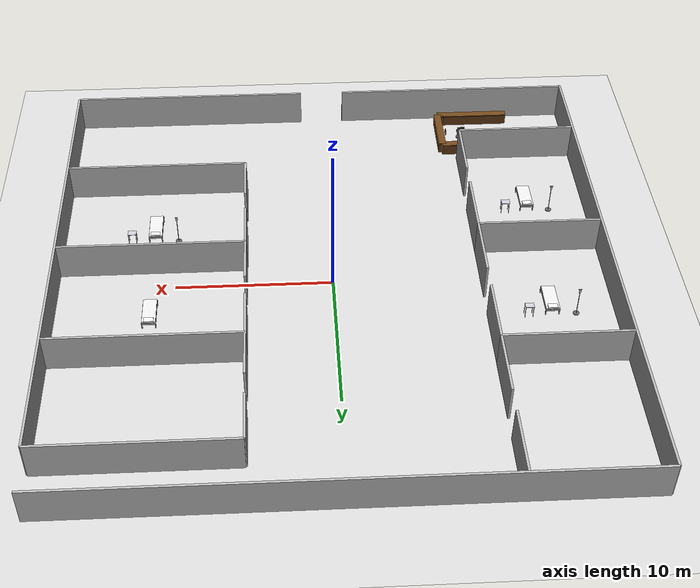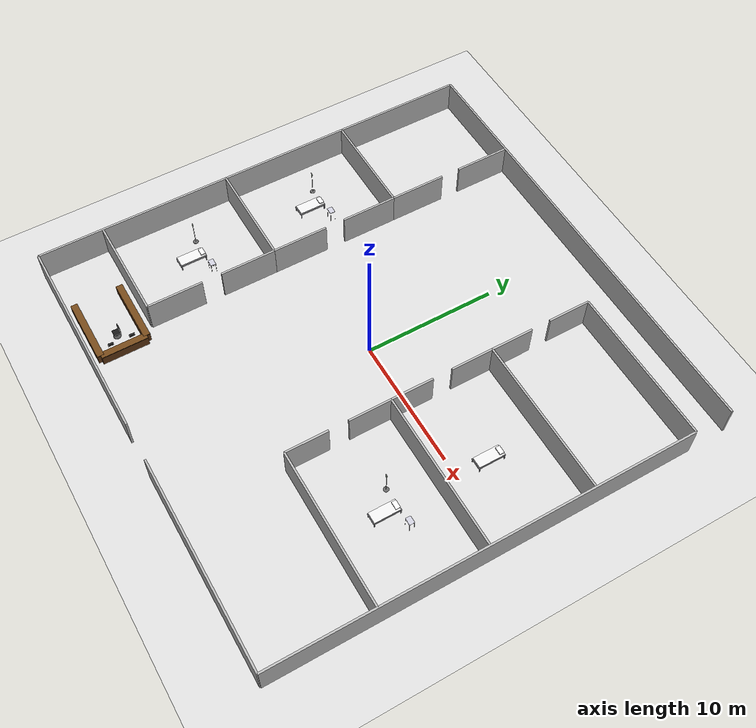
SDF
<sdf version="1.7">
 <world name="pr2_world">
  <model name="ground_plane">
   <static>1</static>
   <link name="link">
    <collision name="collision">
     <geometry><plane><normal>0 0 1</normal><size>200 200</size></plane></geometry>
     <surface><friction><ode><mu>100</mu><mu2>50</mu2></ode></friction></surface>
    </collision>
    <visual name="visual">
     <cast_shadows>0</cast_shadows>
     <geometry><plane><normal>0 0 1</normal><size>200 200</size></plane></geometry>
     <material>
      <ambient>0.85 0.85 0.85 1</ambient>
      <diffuse>0.85 0.85 0.85 1</diffuse>
      <specular>0.05 0.05 0.05 1</specular>
     </material>
    </visual>
   </link>
  </model>
  <model name="pr2_outer_walls">
   <static>1</static>
   <link name="Wall_south_left">
    <collision name="col">
     <geometry><box><size>16.0 0.15 2.5</size></box></geometry>
     <pose>0 0 1.25 0 0 0</pose>
    </collision>
    <visual name="vis">
     <pose>0 0 1.25 0 0 0</pose>
     <geometry><box><size>16.0 0.15 2.5</size></box></geometry>
     <material>
      <script><uri>file://media/materials/scripts/gazebo.material</uri><n>Gazebo/Grey</n></script>
     </material>
    </visual>
    <pose>-9.5 -17.5 0 0 0 0</pose>
   </link>
   <link name="Wall_south_right">
    <collision name="col">
     <geometry><box><size>16.0 0.15 2.5</size></box></geometry>
     <pose>0 0 1.25 0 0 0</pose>
    </collision>
    <visual name="vis">
     <pose>0 0 1.25 0 0 0</pose>
     <geometry><box><size>16.0 0.15 2.5</size></box></geometry>
     <material>
      <script><uri>file://media/materials/scripts/gazebo.material</uri><n>Gazebo/Grey</n></script>
     </material>
    </visual>
    <pose>9.5 -17.5 0 0 0 0</pose>
   </link>
   <link name="Wall_north">
    <collision name="col">
     <geometry><box><size>35.0 0.15 2.5</size></box></geometry>
     <pose>0 0 1.25 0 0 0</pose>
    </collision>
    <visual name="vis">
     <pose>0 0 1.25 0 0 0</pose>
     <geometry><box><size>35.0 0.15 2.5</size></box></geometry>
     <material>
      <script><uri>file://media/materials/scripts/gazebo.material</uri><n>Gazebo/Grey</n></script>
     </material>
    </visual>
    <pose>0 17.5 0 0 0 0</pose>
   </link>
   <link name="Wall_west">
    <collision name="col">
     <geometry><box><size>0.15 35.0 2.5</size></box></geometry>
     <pose>0 0 1.25 0 0 0</pose>
    </collision>
    <visual name="vis">
     <pose>0 0 1.25 0 0 0</pose>
     <geometry><box><size>0.15 35.0 2.5</size></box></geometry>
     <material>
      <script><uri>file://media/materials/scripts/gazebo.material</uri><n>Gazebo/Grey</n></script>
     </material>
    </visual>
    <pose>-17.5 0 0 0 0 0</pose>
   </link>
   <link name="Wall_east_south">
    <collision name="col">
     <geometry><box><size>0.15 32.0 2.5</size></box></geometry>
     <pose>0 0 1.25 0 0 0</pose>
    </collision>
    <visual name="vis">
     <pose>0 0 1.25 0 0 0</pose>
     <geometry><box><size>0.15 32.0 2.5</size></box></geometry>
     <material>
      <script><uri>file://media/materials/scripts/gazebo.material</uri><n>Gazebo/Grey</n></script>
     </material>
    </visual>
    <pose>17.5 -1.5 0 0 0 0</pose>
   </link>
  </model>
  <model name="room1_walls">
   <static>1</static>
   <link name="R1_south">
    <collision name="col">
     <geometry><box><size>8.0 0.15 2.5</size></box></geometry>
     <pose>0 0 1.25 0 0 0</pose>
    </collision>
    <visual name="vis">
     <pose>0 0 1.25 0 0 0</pose>
     <geometry><box><size>8.0 0.15 2.5</size></box></geometry>
     <material>
      <script><uri>file://media/materials/scripts/gazebo.material</uri><n>Gazebo/Grey</n></script>
     </material>
    </visual>
    <pose>-13.5 7.5 0 0 0 0</pose>
   </link>
   <link name="R1_east_s">
    <collision name="col">
     <geometry><box><size>0.15 4.25 2.5</size></box></geometry>
     <pose>0 0 1.25 0 0 0</pose>
    </collision>
    <visual name="vis">
     <pose>0 0 1.25 0 0 0</pose>
     <geometry><box><size>0.15 4.25 2.5</size></box></geometry>
     <material>
      <script><uri>file://media/materials/scripts/gazebo.material</uri><n>Gazebo/Grey</n></script>
     </material>
    </visual>
    <pose>-9.5 9.625 0 0 0 0</pose>
   </link>
   <link name="R1_east_n">
    <collision name="col">
     <geometry><box><size>0.15 4.25 2.5</size></box></geometry>
     <pose>0 0 1.25 0 0 0</pose>
    </collision>
    <visual name="vis">
     <pose>0 0 1.25 0 0 0</pose>
     <geometry><box><size>0.15 4.25 2.5</size></box></geometry>
     <material>
      <script><uri>file://media/materials/scripts/gazebo.material</uri><n>Gazebo/Grey</n></script>
     </material>
    </visual>
    <pose>-9.5 15.375 0 0 0 0</pose>
   </link>
  </model>
  <model name="room2_walls">
   <static>1</static>
   <link name="R2_south">
    <collision name="col">
     <geometry><box><size>8.0 0.15 2.5</size></box></geometry>
     <pose>0 0 1.25 0 0 0</pose>
    </collision>
    <visual name="vis">
     <pose>0 0 1.25 0 0 0</pose>
     <geometry><box><size>8.0 0.15 2.5</size></box></geometry>
     <material>
      <script><uri>file://media/materials/scripts/gazebo.material</uri><n>Gazebo/Grey</n></script>
     </material>
    </visual>
    <pose>-13.5 -2.5 0 0 0 0</pose>
   </link>
   <link name="R2_east_s">
    <collision name="col">
     <geometry><box><size>0.15 4.25 2.5</size></box></geometry>
     <pose>0 0 1.25 0 0 0</pose>
    </collision>
    <visual name="vis">
     <pose>0 0 1.25 0 0 0</pose>
     <geometry><box><size>0.15 4.25 2.5</size></box></geometry>
     <material>
      <script><uri>file://media/materials/scripts/gazebo.material</uri><n>Gazebo/Grey</n></script>
     </material>
    </visual>
    <pose>-9.5 -0.375 0 0 0 0</pose>
   </link>
   <link name="R2_east_n">
    <collision name="col">
     <geometry><box><size>0.15 4.25 2.5</size></box></geometry>
     <pose>0 0 1.25 0 0 0</pose>
    </collision>
    <visual name="vis">
     <pose>0 0 1.25 0 0 0</pose>
     <geometry><box><size>0.15 4.25 2.5</size></box></geometry>
     <material>
      <script><uri>file://media/materials/scripts/gazebo.material</uri><n>Gazebo/Grey</n></script>
     </material>
    </visual>
    <pose>-9.5 5.375 0 0 0 0</pose>
   </link>
  </model>
  <model name="room3_walls">
   <static>1</static>
   <link name="R3_south">
    <collision name="col">
     <geometry><box><size>8.0 0.15 2.5</size></box></geometry>
     <pose>0 0 1.25 0 0 0</pose>
    </collision>
    <visual name="vis">
     <pose>0 0 1.25 0 0 0</pose>
     <geometry><box><size>8.0 0.15 2.5</size></box></geometry>
     <material>
      <script><uri>file://media/materials/scripts/gazebo.material</uri><n>Gazebo/Grey</n></script>
     </material>
    </visual>
    <pose>-13.5 -12.5 0 0 0 0</pose>
   </link>
   <link name="R3_east_s">
    <collision name="col">
     <geometry><box><size>0.15 4.25 2.5</size></box></geometry>
     <pose>0 0 1.25 0 0 0</pose>
    </collision>
    <visual name="vis">
     <pose>0 0 1.25 0 0 0</pose>
     <geometry><box><size>0.15 4.25 2.5</size></box></geometry>
     <material>
      <script><uri>file://media/materials/scripts/gazebo.material</uri><n>Gazebo/Grey</n></script>
     </material>
    </visual>
    <pose>-9.5 -10.375 0 0 0 0</pose>
   </link>
   <link name="R3_east_n">
    <collision name="col">
     <geometry><box><size>0.15 4.25 2.5</size></box></geometry>
     <pose>0 0 1.25 0 0 0</pose>
    </collision>
    <visual name="vis">
     <pose>0 0 1.25 0 0 0</pose>
     <geometry><box><size>0.15 4.25 2.5</size></box></geometry>
     <material>
      <script><uri>file://media/materials/scripts/gazebo.material</uri><n>Gazebo/Grey</n></script>
     </material>
    </visual>
    <pose>-9.5 -4.625 0 0 0 0</pose>
   </link>
  </model>
  <model name="room6_walls">
   <static>1</static>
   <link name="R6_south">
    <collision name="col">
     <geometry><box><size>12.0 0.15 2.5</size></box></geometry>
     <pose>0 0 1.25 0 0 0</pose>
    </collision>
    <visual name="vis">
     <pose>0 0 1.25 0 0 0</pose>
     <geometry><box><size>12.0 0.15 2.5</size></box></geometry>
     <material>
      <script><uri>file://media/materials/scripts/gazebo.material</uri><n>Gazebo/Grey</n></script>
     </material>
    </visual>
    <pose>11.5 6.5 0 0 0 0</pose>
   </link>
   <link name="R6_north">
    <collision name="col">
     <geometry><box><size>12.0 0.15 2.5</size></box></geometry>
     <pose>0 0 1.25 0 0 0</pose>
    </collision>
    <visual name="vis">
     <pose>0 0 1.25 0 0 0</pose>
     <geometry><box><size>12.0 0.15 2.5</size></box></geometry>
     <material>
      <script><uri>file://media/materials/scripts/gazebo.material</uri><n>Gazebo/Grey</n></script>
     </material>
    </visual>
    <pose>11.5 14.5 0 0 0 0</pose>
   </link>
   <link name="R6_west_s">
    <collision name="col">
     <geometry><box><size>0.15 3.25 2.5</size></box></geometry>
     <pose>0 0 1.25 0 0 0</pose>
    </collision>
    <visual name="vis">
     <pose>0 0 1.25 0 0 0</pose>
     <geometry><box><size>0.15 3.25 2.5</size></box></geometry>
     <material>
      <script><uri>file://media/materials/scripts/gazebo.material</uri><n>Gazebo/Grey</n></script>
     </material>
    </visual>
    <pose>5.5 8.125 0 0 0 0</pose>
   </link>
   <link name="R6_west_n">
    <collision name="col">
     <geometry><box><size>0.15 3.25 2.5</size></box></geometry>
     <pose>0 0 1.25 0 0 0</pose>
    </collision>
    <visual name="vis">
     <pose>0 0 1.25 0 0 0</pose>
     <geometry><box><size>0.15 3.25 2.5</size></box></geometry>
     <material>
      <script><uri>file://media/materials/scripts/gazebo.material</uri><n>Gazebo/Grey</n></script>
     </material>
    </visual>
    <pose>5.5 12.875 0 0 0 0</pose>
   </link>
  </model>
  <model name="room5_walls">
   <static>1</static>
   <link name="R5_south">
    <collision name="col">
     <geometry><box><size>12.0 0.15 2.5</size></box></geometry>
     <pose>0 0 1.25 0 0 0</pose>
    </collision>
    <visual name="vis">
     <pose>0 0 1.25 0 0 0</pose>
     <geometry><box><size>12.0 0.15 2.5</size></box></geometry>
     <material>
      <script><uri>file://media/materials/scripts/gazebo.material</uri><n>Gazebo/Grey</n></script>
     </material>
    </visual>
    <pose>11.5 -1.5 0 0 0 0</pose>
   </link>
   <link name="R5_west_s">
    <collision name="col">
     <geometry><box><size>0.15 3.25 2.5</size></box></geometry>
     <pose>0 0 1.25 0 0 0</pose>
    </collision>
    <visual name="vis">
     <pose>0 0 1.25 0 0 0</pose>
     <geometry><box><size>0.15 3.25 2.5</size></box></geometry>
     <material>
      <script><uri>file://media/materials/scripts/gazebo.material</uri><n>Gazebo/Grey</n></script>
     </material>
    </visual>
    <pose>5.5 0.125 0 0 0 0</pose>
   </link>
   <link name="R5_west_n">
    <collision name="col">
     <geometry><box><size>0.15 3.25 2.5</size></box></geometry>
     <pose>0 0 1.25 0 0 0</pose>
    </collision>
    <visual name="vis">
     <pose>0 0 1.25 0 0 0</pose>
     <geometry><box><size>0.15 3.25 2.5</size></box></geometry>
     <material>
      <script><uri>file://media/materials/scripts/gazebo.material</uri><n>Gazebo/Grey</n></script>
     </material>
    </visual>
    <pose>5.5 4.875 0 0 0 0</pose>
   </link>
  </model>
  <model name="room4_walls">
   <static>1</static>
   <link name="R4_south">
    <collision name="col">
     <geometry><box><size>12.0 0.15 2.5</size></box></geometry>
     <pose>0 0 1.25 0 0 0</pose>
    </collision>
    <visual name="vis">
     <pose>0 0 1.25 0 0 0</pose>
     <geometry><box><size>12.0 0.15 2.5</size></box></geometry>
     <material>
      <script><uri>file://media/materials/scripts/gazebo.material</uri><n>Gazebo/Grey</n></script>
     </material>
    </visual>
    <pose>11.5 -9.5 0 0 0 0</pose>
   </link>
   <link name="R4_west_s">
    <collision name="col">
     <geometry><box><size>0.15 3.25 2.5</size></box></geometry>
     <pose>0 0 1.25 0 0 0</pose>
    </collision>
    <visual name="vis">
     <pose>0 0 1.25 0 0 0</pose>
     <geometry><box><size>0.15 3.25 2.5</size></box></geometry>
     <material>
      <script><uri>file://media/materials/scripts/gazebo.material</uri><n>Gazebo/Grey</n></script>
     </material>
    </visual>
    <pose>5.5 -7.875 0 0 0 0</pose>
   </link>
   <link name="R4_west_n">
    <collision name="col">
     <geometry><box><size>0.15 3.25 2.5</size></box></geometry>
     <pose>0 0 1.25 0 0 0</pose>
    </collision>
    <visual name="vis">
     <pose>0 0 1.25 0 0 0</pose>
     <geometry><box><size>0.15 3.25 2.5</size></box></geometry>
     <material>
      <script><uri>file://media/materials/scripts/gazebo.material</uri><n>Gazebo/Grey</n></script>
     </material>
    </visual>
    <pose>5.5 -3.125 0 0 0 0</pose>
   </link>
  </model>
  <model name="reception_back">
   <static>1</static>
   <pose>-8.5 -15.0 0 0 0 0</pose>
   <link name="link">
    <visual name="top_vis">
     <pose>0 0 0.75 0 0 0</pose>
     <geometry><box><size>0.50 3.5 0.06</size></box></geometry>
     <material>
      <ambient>0.45 0.28 0.10 1</ambient>
      <diffuse>0.45 0.28 0.10 1</diffuse>
      <specular>0.12 0.08 0.04 1</specular>
     </material>
    </visual>
    <collision name="top_col">
     <pose>0 0 0.75 0 0 0</pose>
     <geometry><box><size>0.50 3.5 0.06</size></box></geometry>
    </collision>
    <visual name="body_vis">
     <pose>0 0 0.375 0 0 0</pose>
     <geometry><box><size>0.50 3.5 0.75</size></box></geometry>
     <material><ambient>0.38 0.22 0.08 1</ambient><diffuse>0.38 0.22 0.08 1</diffuse></material>
    </visual>
    <collision name="body_col">
     <pose>0 0 0.375 0 0 0</pose>
     <geometry><box><size>0.50 3.5 0.75</size></box></geometry>
    </collision>
    <visual name="mon1">
     <pose>-0.3 -0.8 1.10 0 0 0</pose>
     <geometry><box><size>0.05 0.40 0.28</size></box></geometry>
     <material><ambient>0.08 0.08 0.08 1</ambient><diffuse>0.08 0.08 0.08 1</diffuse></material>
    </visual>
    <visual name="scr1">
     <pose>-0.3 -0.8 1.10 0 0 0</pose>
     <geometry><box><size>0.02 0.34 0.22</size></box></geometry>
     <material><ambient>0.10 0.30 0.50 1</ambient><diffuse>0.10 0.30 0.50 1</diffuse></material>
    </visual>
    <visual name="mon2">
     <pose>-0.3 0.8 1.10 0 0 0</pose>
     <geometry><box><size>0.05 0.40 0.28</size></box></geometry>
     <material><ambient>0.08 0.08 0.08 1</ambient><diffuse>0.08 0.08 0.08 1</diffuse></material>
    </visual>
    <visual name="scr2">
     <pose>-0.3 0.8 1.10 0 0 0</pose>
     <geometry><box><size>0.02 0.34 0.22</size></box></geometry>
     <material><ambient>0.10 0.30 0.50 1</ambient><diffuse>0.10 0.30 0.50 1</diffuse></material>
    </visual>
   </link>
  </model>
  <model name="reception_south_arm">
   <static>1</static>
   <pose>-11.0 -16.75 0 0 0 0</pose>
   <link name="link">
    <visual name="top_vis">
     <pose>0 0 0.75 0 0 0</pose>
     <geometry><box><size>5.0 0.50 0.06</size></box></geometry>
     <material><ambient>0.45 0.28 0.10 1</ambient><diffuse>0.45 0.28 0.10 1</diffuse></material>
    </visual>
    <collision name="top_col">
     <pose>0 0 0.75 0 0 0</pose>
     <geometry><box><size>5.0 0.50 0.06</size></box></geometry>
    </collision>
    <visual name="body_vis">
     <pose>0 0 0.375 0 0 0</pose>
     <geometry><box><size>5.0 0.50 0.75</size></box></geometry>
     <material><ambient>0.38 0.22 0.08 1</ambient><diffuse>0.38 0.22 0.08 1</diffuse></material>
    </visual>
    <collision name="body_col">
     <pose>0 0 0.375 0 0 0</pose>
     <geometry><box><size>5.0 0.50 0.75</size></box></geometry>
    </collision>
   </link>
  </model>
  <model name="reception_north_arm">
   <static>1</static>
   <pose>-11.0 -13.25 0 0 0 0</pose>
   <link name="link">
    <visual name="top_vis">
     <pose>0 0 0.75 0 0 0</pose>
     <geometry><box><size>5.0 0.50 0.06</size></box></geometry>
     <material><ambient>0.45 0.28 0.10 1</ambient><diffuse>0.45 0.28 0.10 1</diffuse></material>
    </visual>
    <collision name="top_col">
     <pose>0 0 0.75 0 0 0</pose>
     <geometry><box><size>5.0 0.50 0.06</size></box></geometry>
    </collision>
    <visual name="body_vis">
     <pose>0 0 0.375 0 0 0</pose>
     <geometry><box><size>5.0 0.50 0.75</size></box></geometry>
     <material><ambient>0.38 0.22 0.08 1</ambient><diffuse>0.38 0.22 0.08 1</diffuse></material>
    </visual>
    <collision name="body_col">
     <pose>0 0 0.375 0 0 0</pose>
     <geometry><box><size>5.0 0.50 0.75</size></box></geometry>
    </collision>
   </link>
  </model>
  <model name="reception_chair">
   <static>1</static>
   <pose>-10.0 -15.0 0 0 0 0</pose>
   <link name="link">
    <visual name="seat_vis">
     <pose>0 0 0.48 0 0 0</pose>
     <geometry><box><size>0.50 0.50 0.06</size></box></geometry>
     <material><ambient>0.10 0.10 0.10 1</ambient><diffuse>0.10 0.10 0.10 1</diffuse></material>
    </visual>
    <collision name="seat_col">
     <pose>0 0 0.48 0 0 0</pose>
     <geometry><box><size>0.50 0.50 0.06</size></box></geometry>
    </collision>
    <visual name="back_vis">
     <pose>0 0.24 0.76 0 0 0</pose>
     <geometry><box><size>0.50 0.06 0.55</size></box></geometry>
     <material><ambient>0.10 0.10 0.10 1</ambient><diffuse>0.10 0.10 0.10 1</diffuse></material>
    </visual>
    <collision name="back_col">
     <pose>0 0.24 0.76 0 0 0</pose>
     <geometry><box><size>0.50 0.06 0.55</size></box></geometry>
    </collision>
    <visual name="lift_vis">
     <pose>0 0 0.24 0 0 0</pose>
     <geometry><cylinder><radius>0.04</radius><length>0.48</length></cylinder></geometry>
     <material><ambient>0.50 0.50 0.50 1</ambient><diffuse>0.50 0.50 0.50 1</diffuse></material>
    </visual>
    <collision name="lift_col">
     <pose>0 0 0.24 0 0 0</pose>
     <geometry><cylinder><radius>0.04</radius><length>0.48</length></cylinder></geometry>
    </collision>
    <visual name="base_vis">
     <pose>0 0 0.04 0 0 0</pose>
     <geometry><cylinder><radius>0.28</radius><length>0.04</length></cylinder></geometry>
     <material><ambient>0.30 0.30 0.30 1</ambient><diffuse>0.30 0.30 0.30 1</diffuse></material>
    </visual>
    <collision name="base_col">
     <pose>0 0 0.04 0 0 0</pose>
     <geometry><cylinder><radius>0.28</radius><length>0.04</length></cylinder></geometry>
    </collision>
   </link>
  </model>
  <model name="bed_2">
   <static>1</static>
   <pose>-13.5 2.5 0 0 0 0</pose>
   <link name="link">
    <visual name="frame_vis">
     <pose>0 0 0.40 0 0 0</pose>
     <geometry><box><size>0.90 2.10 0.10</size></box></geometry>
     <material>
      <ambient>0.70 0.70 0.72 1</ambient>
      <diffuse>0.70 0.70 0.72 1</diffuse>
      <specular>0.30 0.30 0.32 1</specular>
     </material>
    </visual>
    <collision name="frame_col">
     <pose>0 0 0.40 0 0 0</pose>
     <geometry><box><size>0.90 2.10 0.10</size></box></geometry>
    </collision>
    <visual name="mattress_vis">
     <pose>0 0 0.48 0 0 0</pose>
     <geometry><box><size>0.85 2.00 0.12</size></box></geometry>
     <material><ambient>0.92 0.92 0.92 1</ambient><diffuse>0.92 0.92 0.92 1</diffuse></material>
    </visual>
    <visual name="pillow_vis">
     <pose>0 0.85 0.57 0 0 0</pose>
     <geometry><box><size>0.60 0.35 0.10</size></box></geometry>
     <material><ambient>0.95 0.95 0.95 1</ambient><diffuse>0.95 0.95 0.95 1</diffuse></material>
    </visual>
    <visual name="l1">
     <pose>-0.42 -0.98 0.20 0 0 0</pose>
     <geometry><box><size>0.06 0.06 0.40</size></box></geometry>
     <material><ambient>0.60 0.60 0.62 1</ambient><diffuse>0.60 0.60 0.62 1</diffuse></material>
    </visual>
    <visual name="l2">
     <pose>0.42 -0.98 0.20 0 0 0</pose>
     <geometry><box><size>0.06 0.06 0.40</size></box></geometry>
     <material><ambient>0.60 0.60 0.62 1</ambient><diffuse>0.60 0.60 0.62 1</diffuse></material>
    </visual>
    <visual name="l3">
     <pose>-0.42 0.98 0.20 0 0 0</pose>
     <geometry><box><size>0.06 0.06 0.40</size></box></geometry>
     <material><ambient>0.60 0.60 0.62 1</ambient><diffuse>0.60 0.60 0.62 1</diffuse></material>
    </visual>
    <visual name="l4">
     <pose>0.42 0.98 0.20 0 0 0</pose>
     <geometry><box><size>0.06 0.06 0.40</size></box></geometry>
     <material><ambient>0.60 0.60 0.62 1</ambient><diffuse>0.60 0.60 0.62 1</diffuse></material>
    </visual>
   </link>
  </model>
  <model name="iv_2">
   <static>1</static>
   <pose>-15.0 3.5 0 0 0 0</pose>
   <link name="link">
    <visual name="pole_vis">
     <pose>0 0 1.0 0 0 0</pose>
     <geometry><cylinder><radius>0.02</radius><length>2.00</length></cylinder></geometry>
     <material><ambient>0.70 0.70 0.70 1</ambient><diffuse>0.70 0.70 0.70 1</diffuse></material>
    </visual>
    <collision name="pole_col">
     <pose>0 0 1.0 0 0 0</pose>
     <geometry><cylinder><radius>0.02</radius><length>2.00</length></cylinder></geometry>
    </collision>
    <visual name="hook_vis">
     <pose>0 0 2.05 0 0 0</pose>
     <geometry><box><size>0.20 0.02 0.06</size></box></geometry>
     <material><ambient>0.70 0.70 0.70 1</ambient><diffuse>0.70 0.70 0.70 1</diffuse></material>
    </visual>
    <visual name="bag_vis">
     <pose>0 0 1.90 0 0 0</pose>
     <geometry><box><size>0.12 0.04 0.20</size></box></geometry>
     <material><ambient>0.80 0.90 0.80 1</ambient><diffuse>0.80 0.90 0.80 1</diffuse></material>
    </visual>
    <visual name="base_vis">
     <pose>0 0 0.04 0 0 0</pose>
     <geometry><cylinder><radius>0.20</radius><length>0.04</length></cylinder></geometry>
     <material><ambient>0.40 0.40 0.40 1</ambient><diffuse>0.40 0.40 0.40 1</diffuse></material>
    </visual>
    <collision name="base_col">
     <pose>0 0 0.04 0 0 0</pose>
     <geometry><cylinder><radius>0.20</radius><length>0.04</length></cylinder></geometry>
    </collision>
   </link>
  </model>
  <model name="tools_2">
   <static>1</static>
   <pose>-12.0 3.5 0 0 0 0</pose>
   <link name="link">
    <visual name="tray_vis">
     <pose>0 0 0.85 0 0 0</pose>
     <geometry><box><size>0.55 0.40 0.04</size></box></geometry>
     <material>
      <ambient>0.80 0.80 0.85 1</ambient>
      <diffuse>0.80 0.80 0.85 1</diffuse>
      <specular>0.50 0.50 0.55 1</specular>
     </material>
    </visual>
    <collision name="tray_col">
     <pose>0 0 0.85 0 0 0</pose>
     <geometry><box><size>0.55 0.40 0.04</size></box></geometry>
    </collision>
    <visual name="l1">
     <pose>-0.25 -0.18 0.425 0 0 0</pose>
     <geometry><cylinder><radius>0.015</radius><length>0.85</length></cylinder></geometry>
     <material><ambient>0.60 0.60 0.60 1</ambient><diffuse>0.60 0.60 0.60 1</diffuse></material>
    </visual>
    <collision name="l1c">
     <pose>-0.25 -0.18 0.425 0 0 0</pose>
     <geometry><cylinder><radius>0.015</radius><length>0.85</length></cylinder></geometry>
    </collision>
    <visual name="l2">
     <pose>0.25 -0.18 0.425 0 0 0</pose>
     <geometry><cylinder><radius>0.015</radius><length>0.85</length></cylinder></geometry>
     <material><ambient>0.60 0.60 0.60 1</ambient><diffuse>0.60 0.60 0.60 1</diffuse></material>
    </visual>
    <collision name="l2c">
     <pose>0.25 -0.18 0.425 0 0 0</pose>
     <geometry><cylinder><radius>0.015</radius><length>0.85</length></cylinder></geometry>
    </collision>
    <visual name="l3">
     <pose>-0.25 0.18 0.425 0 0 0</pose>
     <geometry><cylinder><radius>0.015</radius><length>0.85</length></cylinder></geometry>
     <material><ambient>0.60 0.60 0.60 1</ambient><diffuse>0.60 0.60 0.60 1</diffuse></material>
    </visual>
    <collision name="l3c">
     <pose>-0.25 0.18 0.425 0 0 0</pose>
     <geometry><cylinder><radius>0.015</radius><length>0.85</length></cylinder></geometry>
    </collision>
    <visual name="l4">
     <pose>0.25 0.18 0.425 0 0 0</pose>
     <geometry><cylinder><radius>0.015</radius><length>0.85</length></cylinder></geometry>
     <material><ambient>0.60 0.60 0.60 1</ambient><diffuse>0.60 0.60 0.60 1</diffuse></material>
    </visual>
    <collision name="l4c">
     <pose>0.25 0.18 0.425 0 0 0</pose>
     <geometry><cylinder><radius>0.015</radius><length>0.85</length></cylinder></geometry>
    </collision>
   </link>
  </model>
  <model name="bed_3">
   <static>1</static>
   <pose>-13.5 -7.5 0 0 0 0</pose>
   <link name="link">
    <visual name="frame_vis">
     <pose>0 0 0.40 0 0 0</pose>
     <geometry><box><size>0.90 2.10 0.10</size></box></geometry>
     <material>
      <ambient>0.70 0.70 0.72 1</ambient>
      <diffuse>0.70 0.70 0.72 1</diffuse>
      <specular>0.30 0.30 0.32 1</specular>
     </material>
    </visual>
    <collision name="frame_col">
     <pose>0 0 0.40 0 0 0</pose>
     <geometry><box><size>0.90 2.10 0.10</size></box></geometry>
    </collision>
    <visual name="mattress_vis">
     <pose>0 0 0.48 0 0 0</pose>
     <geometry><box><size>0.85 2.00 0.12</size></box></geometry>
     <material><ambient>0.92 0.92 0.92 1</ambient><diffuse>0.92 0.92 0.92 1</diffuse></material>
    </visual>
    <visual name="pillow_vis">
     <pose>0 0.85 0.57 0 0 0</pose>
     <geometry><box><size>0.60 0.35 0.10</size></box></geometry>
     <material><ambient>0.95 0.95 0.95 1</ambient><diffuse>0.95 0.95 0.95 1</diffuse></material>
    </visual>
    <visual name="l1">
     <pose>-0.42 -0.98 0.20 0 0 0</pose>
     <geometry><box><size>0.06 0.06 0.40</size></box></geometry>
     <material><ambient>0.60 0.60 0.62 1</ambient><diffuse>0.60 0.60 0.62 1</diffuse></material>
    </visual>
    <visual name="l2">
     <pose>0.42 -0.98 0.20 0 0 0</pose>
     <geometry><box><size>0.06 0.06 0.40</size></box></geometry>
     <material><ambient>0.60 0.60 0.62 1</ambient><diffuse>0.60 0.60 0.62 1</diffuse></material>
    </visual>
    <visual name="l3">
     <pose>-0.42 0.98 0.20 0 0 0</pose>
     <geometry><box><size>0.06 0.06 0.40</size></box></geometry>
     <material><ambient>0.60 0.60 0.62 1</ambient><diffuse>0.60 0.60 0.62 1</diffuse></material>
    </visual>
    <visual name="l4">
     <pose>0.42 0.98 0.20 0 0 0</pose>
     <geometry><box><size>0.06 0.06 0.40</size></box></geometry>
     <material><ambient>0.60 0.60 0.62 1</ambient><diffuse>0.60 0.60 0.62 1</diffuse></material>
    </visual>
   </link>
  </model>
  <model name="iv_3">
   <static>1</static>
   <pose>-15.0 -6.5 0 0 0 0</pose>
   <link name="link">
    <visual name="pole_vis">
     <pose>0 0 1.0 0 0 0</pose>
     <geometry><cylinder><radius>0.02</radius><length>2.00</length></cylinder></geometry>
     <material><ambient>0.70 0.70 0.70 1</ambient><diffuse>0.70 0.70 0.70 1</diffuse></material>
    </visual>
    <collision name="pole_col">
     <pose>0 0 1.0 0 0 0</pose>
     <geometry><cylinder><radius>0.02</radius><length>2.00</length></cylinder></geometry>
    </collision>
    <visual name="hook_vis">
     <pose>0 0 2.05 0 0 0</pose>
     <geometry><box><size>0.20 0.02 0.06</size></box></geometry>
     <material><ambient>0.70 0.70 0.70 1</ambient><diffuse>0.70 0.70 0.70 1</diffuse></material>
    </visual>
    <visual name="bag_vis">
     <pose>0 0 1.90 0 0 0</pose>
     <geometry><box><size>0.12 0.04 0.20</size></box></geometry>
     <material><ambient>0.80 0.90 0.80 1</ambient><diffuse>0.80 0.90 0.80 1</diffuse></material>
    </visual>
    <visual name="base_vis">
     <pose>0 0 0.04 0 0 0</pose>
     <geometry><cylinder><radius>0.20</radius><length>0.04</length></cylinder></geometry>
     <material><ambient>0.40 0.40 0.40 1</ambient><diffuse>0.40 0.40 0.40 1</diffuse></material>
    </visual>
    <collision name="base_col">
     <pose>0 0 0.04 0 0 0</pose>
     <geometry><cylinder><radius>0.20</radius><length>0.04</length></cylinder></geometry>
    </collision>
   </link>
  </model>
  <model name="tools_3">
   <static>1</static>
   <pose>-12.0 -6.5 0 0 0 0</pose>
   <link name="link">
    <visual name="tray_vis">
     <pose>0 0 0.85 0 0 0</pose>
     <geometry><box><size>0.55 0.40 0.04</size></box></geometry>
     <material>
      <ambient>0.80 0.80 0.85 1</ambient>
      <diffuse>0.80 0.80 0.85 1</diffuse>
      <specular>0.50 0.50 0.55 1</specular>
     </material>
    </visual>
    <collision name="tray_col">
     <pose>0 0 0.85 0 0 0</pose>
     <geometry><box><size>0.55 0.40 0.04</size></box></geometry>
    </collision>
    <visual name="l1">
     <pose>-0.25 -0.18 0.425 0 0 0</pose>
     <geometry><cylinder><radius>0.015</radius><length>0.85</length></cylinder></geometry>
     <material><ambient>0.60 0.60 0.60 1</ambient><diffuse>0.60 0.60 0.60 1</diffuse></material>
    </visual>
    <collision name="l1c">
     <pose>-0.25 -0.18 0.425 0 0 0</pose>
     <geometry><cylinder><radius>0.015</radius><length>0.85</length></cylinder></geometry>
    </collision>
    <visual name="l2">
     <pose>0.25 -0.18 0.425 0 0 0</pose>
     <geometry><cylinder><radius>0.015</radius><length>0.85</length></cylinder></geometry>
     <material><ambient>0.60 0.60 0.60 1</ambient><diffuse>0.60 0.60 0.60 1</diffuse></material>
    </visual>
    <collision name="l2c">
     <pose>0.25 -0.18 0.425 0 0 0</pose>
     <geometry><cylinder><radius>0.015</radius><length>0.85</length></cylinder></geometry>
    </collision>
    <visual name="l3">
     <pose>-0.25 0.18 0.425 0 0 0</pose>
     <geometry><cylinder><radius>0.015</radius><length>0.85</length></cylinder></geometry>
     <material><ambient>0.60 0.60 0.60 1</ambient><diffuse>0.60 0.60 0.60 1</diffuse></material>
    </visual>
    <collision name="l3c">
     <pose>-0.25 0.18 0.425 0 0 0</pose>
     <geometry><cylinder><radius>0.015</radius><length>0.85</length></cylinder></geometry>
    </collision>
    <visual name="l4">
     <pose>0.25 0.18 0.425 0 0 0</pose>
     <geometry><cylinder><radius>0.015</radius><length>0.85</length></cylinder></geometry>
     <material><ambient>0.60 0.60 0.60 1</ambient><diffuse>0.60 0.60 0.60 1</diffuse></material>
    </visual>
    <collision name="l4c">
     <pose>0.25 0.18 0.425 0 0 0</pose>
     <geometry><cylinder><radius>0.015</radius><length>0.85</length></cylinder></geometry>
    </collision>
   </link>
  </model>
  <model name="bed_4">
   <static>1</static>
   <pose>11.5 -5.5 0 0 0 0</pose>
   <link name="link">
    <visual name="frame_vis">
     <pose>0 0 0.40 0 0 0</pose>
     <geometry><box><size>0.90 2.10 0.10</size></box></geometry>
     <material>
      <ambient>0.70 0.70 0.72 1</ambient>
      <diffuse>0.70 0.70 0.72 1</diffuse>
      <specular>0.30 0.30 0.32 1</specular>
     </material>
    </visual>
    <collision name="frame_col">
     <pose>0 0 0.40 0 0 0</pose>
     <geometry><box><size>0.90 2.10 0.10</size></box></geometry>
    </collision>
    <visual name="mattress_vis">
     <pose>0 0 0.48 0 0 0</pose>
     <geometry><box><size>0.85 2.00 0.12</size></box></geometry>
     <material><ambient>0.92 0.92 0.92 1</ambient><diffuse>0.92 0.92 0.92 1</diffuse></material>
    </visual>
    <visual name="pillow_vis">
     <pose>0 0.85 0.57 0 0 0</pose>
     <geometry><box><size>0.60 0.35 0.10</size></box></geometry>
     <material><ambient>0.95 0.95 0.95 1</ambient><diffuse>0.95 0.95 0.95 1</diffuse></material>
    </visual>
    <visual name="l1">
     <pose>-0.42 -0.98 0.20 0 0 0</pose>
     <geometry><box><size>0.06 0.06 0.40</size></box></geometry>
     <material><ambient>0.60 0.60 0.62 1</ambient><diffuse>0.60 0.60 0.62 1</diffuse></material>
    </visual>
    <visual name="l2">
     <pose>0.42 -0.98 0.20 0 0 0</pose>
     <geometry><box><size>0.06 0.06 0.40</size></box></geometry>
     <material><ambient>0.60 0.60 0.62 1</ambient><diffuse>0.60 0.60 0.62 1</diffuse></material>
    </visual>
    <visual name="l3">
     <pose>-0.42 0.98 0.20 0 0 0</pose>
     <geometry><box><size>0.06 0.06 0.40</size></box></geometry>
     <material><ambient>0.60 0.60 0.62 1</ambient><diffuse>0.60 0.60 0.62 1</diffuse></material>
    </visual>
    <visual name="l4">
     <pose>0.42 0.98 0.20 0 0 0</pose>
     <geometry><box><size>0.06 0.06 0.40</size></box></geometry>
     <material><ambient>0.60 0.60 0.62 1</ambient><diffuse>0.60 0.60 0.62 1</diffuse></material>
    </visual>
   </link>
  </model>
  <model name="iv_4">
   <static>1</static>
   <pose>10.0 -4.5 0 0 0 0</pose>
   <link name="link">
    <visual name="pole_vis">
     <pose>0 0 1.0 0 0 0</pose>
     <geometry><cylinder><radius>0.02</radius><length>2.00</length></cylinder></geometry>
     <material><ambient>0.70 0.70 0.70 1</ambient><diffuse>0.70 0.70 0.70 1</diffuse></material>
    </visual>
    <collision name="pole_col">
     <pose>0 0 1.0 0 0 0</pose>
     <geometry><cylinder><radius>0.02</radius><length>2.00</length></cylinder></geometry>
    </collision>
    <visual name="hook_vis">
     <pose>0 0 2.05 0 0 0</pose>
     <geometry><box><size>0.20 0.02 0.06</size></box></geometry>
     <material><ambient>0.70 0.70 0.70 1</ambient><diffuse>0.70 0.70 0.70 1</diffuse></material>
    </visual>
    <visual name="bag_vis">
     <pose>0 0 1.90 0 0 0</pose>
     <geometry><box><size>0.12 0.04 0.20</size></box></geometry>
     <material><ambient>0.80 0.90 0.80 1</ambient><diffuse>0.80 0.90 0.80 1</diffuse></material>
    </visual>
    <visual name="base_vis">
     <pose>0 0 0.04 0 0 0</pose>
     <geometry><cylinder><radius>0.20</radius><length>0.04</length></cylinder></geometry>
     <material><ambient>0.40 0.40 0.40 1</ambient><diffuse>0.40 0.40 0.40 1</diffuse></material>
    </visual>
    <collision name="base_col">
     <pose>0 0 0.04 0 0 0</pose>
     <geometry><cylinder><radius>0.20</radius><length>0.04</length></cylinder></geometry>
    </collision>
   </link>
  </model>
  <model name="tools_4">
   <static>1</static>
   <pose>13.0 -4.5 0 0 0 0</pose>
   <link name="link">
    <visual name="tray_vis">
     <pose>0 0 0.85 0 0 0</pose>
     <geometry><box><size>0.55 0.40 0.04</size></box></geometry>
     <material>
      <ambient>0.80 0.80 0.85 1</ambient>
      <diffuse>0.80 0.80 0.85 1</diffuse>
      <specular>0.50 0.50 0.55 1</specular>
     </material>
    </visual>
    <collision name="tray_col">
     <pose>0 0 0.85 0 0 0</pose>
     <geometry><box><size>0.55 0.40 0.04</size></box></geometry>
    </collision>
    <visual name="l1">
     <pose>-0.25 -0.18 0.425 0 0 0</pose>
     <geometry><cylinder><radius>0.015</radius><length>0.85</length></cylinder></geometry>
     <material><ambient>0.60 0.60 0.60 1</ambient><diffuse>0.60 0.60 0.60 1</diffuse></material>
    </visual>
    <collision name="l1c">
     <pose>-0.25 -0.18 0.425 0 0 0</pose>
     <geometry><cylinder><radius>0.015</radius><length>0.85</length></cylinder></geometry>
    </collision>
    <visual name="l2">
     <pose>0.25 -0.18 0.425 0 0 0</pose>
     <geometry><cylinder><radius>0.015</radius><length>0.85</length></cylinder></geometry>
     <material><ambient>0.60 0.60 0.60 1</ambient><diffuse>0.60 0.60 0.60 1</diffuse></material>
    </visual>
    <collision name="l2c">
     <pose>0.25 -0.18 0.425 0 0 0</pose>
     <geometry><cylinder><radius>0.015</radius><length>0.85</length></cylinder></geometry>
    </collision>
    <visual name="l3">
     <pose>-0.25 0.18 0.425 0 0 0</pose>
     <geometry><cylinder><radius>0.015</radius><length>0.85</length></cylinder></geometry>
     <material><ambient>0.60 0.60 0.60 1</ambient><diffuse>0.60 0.60 0.60 1</diffuse></material>
    </visual>
    <collision name="l3c">
     <pose>-0.25 0.18 0.425 0 0 0</pose>
     <geometry><cylinder><radius>0.015</radius><length>0.85</length></cylinder></geometry>
    </collision>
    <visual name="l4">
     <pose>0.25 0.18 0.425 0 0 0</pose>
     <geometry><cylinder><radius>0.015</radius><length>0.85</length></cylinder></geometry>
     <material><ambient>0.60 0.60 0.60 1</ambient><diffuse>0.60 0.60 0.60 1</diffuse></material>
    </visual>
    <collision name="l4c">
     <pose>0.25 0.18 0.425 0 0 0</pose>
     <geometry><cylinder><radius>0.015</radius><length>0.85</length></cylinder></geometry>
    </collision>
   </link>
  </model>
  <model name="bed_5">
   <static>1</static>
   <pose>11.5 2.5 0 0 0 0</pose>
   <link name="link">
    <visual name="frame_vis">
     <pose>0 0 0.40 0 0 0</pose>
     <geometry><box><size>0.90 2.10 0.10</size></box></geometry>
     <material>
      <ambient>0.70 0.70 0.72 1</ambient>
      <diffuse>0.70 0.70 0.72 1</diffuse>
      <specular>0.30 0.30 0.32 1</specular>
     </material>
    </visual>
    <collision name="frame_col">
     <pose>0 0 0.40 0 0 0</pose>
     <geometry><box><size>0.90 2.10 0.10</size></box></geometry>
    </collision>
    <visual name="mattress_vis">
     <pose>0 0 0.48 0 0 0</pose>
     <geometry><box><size>0.85 2.00 0.12</size></box></geometry>
     <material><ambient>0.92 0.92 0.92 1</ambient><diffuse>0.92 0.92 0.92 1</diffuse></material>
    </visual>
    <visual name="pillow_vis">
     <pose>0 0.85 0.57 0 0 0</pose>
     <geometry><box><size>0.60 0.35 0.10</size></box></geometry>
     <material><ambient>0.95 0.95 0.95 1</ambient><diffuse>0.95 0.95 0.95 1</diffuse></material>
    </visual>
    <visual name="l1">
     <pose>-0.42 -0.98 0.20 0 0 0</pose>
     <geometry><box><size>0.06 0.06 0.40</size></box></geometry>
     <material><ambient>0.60 0.60 0.62 1</ambient><diffuse>0.60 0.60 0.62 1</diffuse></material>
    </visual>
    <visual name="l2">
     <pose>0.42 -0.98 0.20 0 0 0</pose>
     <geometry><box><size>0.06 0.06 0.40</size></box></geometry>
     <material><ambient>0.60 0.60 0.62 1</ambient><diffuse>0.60 0.60 0.62 1</diffuse></material>
    </visual>
    <visual name="l3">
     <pose>-0.42 0.98 0.20 0 0 0</pose>
     <geometry><box><size>0.06 0.06 0.40</size></box></geometry>
     <material><ambient>0.60 0.60 0.62 1</ambient><diffuse>0.60 0.60 0.62 1</diffuse></material>
    </visual>
    <visual name="l4">
     <pose>0.42 0.98 0.20 0 0 0</pose>
     <geometry><box><size>0.06 0.06 0.40</size></box></geometry>
     <material><ambient>0.60 0.60 0.62 1</ambient><diffuse>0.60 0.60 0.62 1</diffuse></material>
    </visual>
   </link>
  </model>
 </world>
</sdf>
